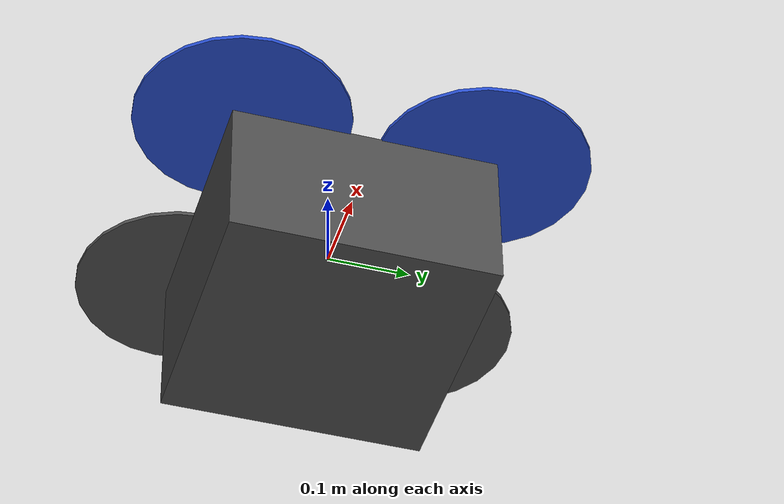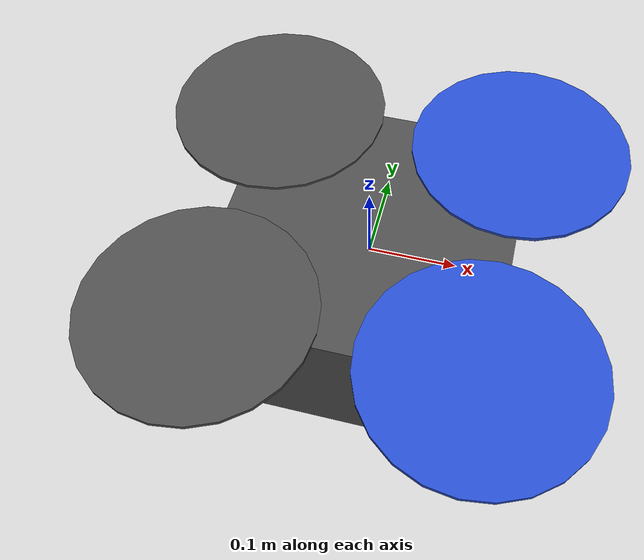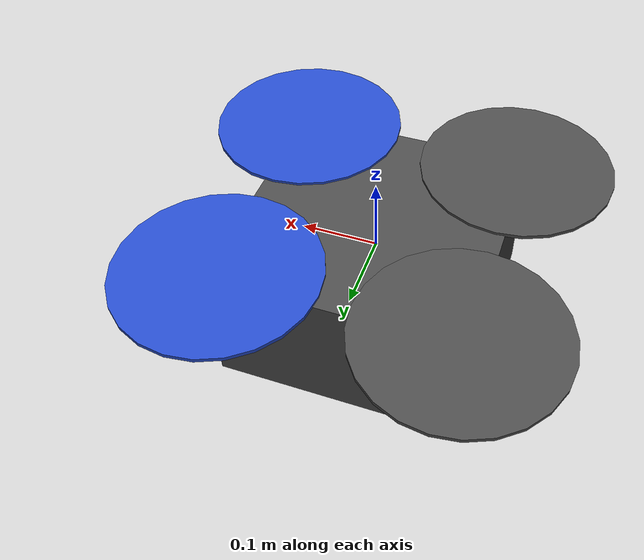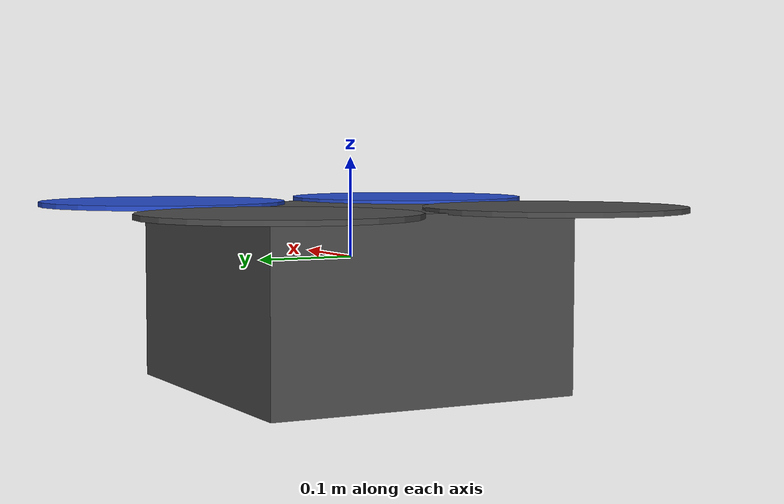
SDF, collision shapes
<sdf version='1.5'>
  <model name='solo'>
    <!-- Solo body -->
    <link name='base_link'>
      <pose>0 0 0 0 0 0</pose>
      <inertial>
        <pose>0 0 0 0 0 0</pose>
        <mass>1.47</mass>
        <inertia>
          <ixx>0.011</ixx>
          <ixy>0</ixy>
          <ixz>0</ixz>
          <iyy>0.015</iyy>
          <iyz>0</iyz>
          <izz>0.021</izz>
        </inertia>
      </inertial>
      <collision name='base_link_inertia_collision'>
        <pose>0 0 -0.04 0 0 0</pose>
        <geometry>
          <box>
            <size>0.32 0.32 0.18</size>
          </box>
        </geometry>
        <surface>
          <contact>
            <ode>
              <min_depth>0.001</min_depth>
              <max_vel>0</max_vel>
            </ode>
          </contact>
          <friction>
            <ode/>
          </friction>
        </surface>
      </collision>
      <visual name='base_link_inertia_visual'>
        <pose>0 0 0 0 0 0</pose>
        <geometry>
          <mesh>
            <scale>1 1 1</scale>
            <uri>model://solo/meshes/solo.stl</uri>
          </mesh>
        </geometry>
        <material>
          <script>
            <name>Gazebo/DarkGrey</name>
            <uri>file://media/materials/scripts/gazebo.material</uri>
          </script>
        </material>
      </visual>
      <gravity>1</gravity>
      <velocity_decay/>
      <self_collide>0</self_collide>
    </link>
    <link name='imu_link'>
      <pose>0 0 0 0 0 0</pose>
      <inertial>
        <pose>0 0 0 0 0 0</pose>
        <mass>0.015</mass>
        <inertia>
          <ixx>1e-05</ixx>
          <ixy>0</ixy>
          <ixz>0</ixz>
          <iyy>1e-05</iyy>
          <iyz>0</iyz>
          <izz>1e-05</izz>
        </inertia>
      </inertial>
    </link>
    <joint name='imu_joint' type='revolute'>
      <child>imu_link</child>
      <parent>base_link</parent>
      <axis>
        <xyz>1 0 0</xyz>
        <limit>
          <lower>0</lower>
          <upper>0</upper>
          <effort>0</effort>
          <velocity>0</velocity>
        </limit>
        <dynamics>
          <spring_reference>0</spring_reference>
          <spring_stiffness>0</spring_stiffness>
        </dynamics>
        <use_parent_model_frame>1</use_parent_model_frame>
      </axis>
    </joint>
    <link name='rotor_0'>
      <pose>0.14745 -0.14525 0.051 0 0 0</pose>
      <inertial>
        <pose>0 0 0 0 0 0</pose>
        <mass>0.005</mass>
        <inertia>
          <ixx>9.75e-07</ixx>
          <ixy>0</ixy>
          <ixz>0</ixz>
          <iyy>0.000273104</iyy>
          <iyz>0</iyz>
          <izz>0.000274004</izz>
        </inertia>
      </inertial>
      <collision name='rotor_0_collision'>
        <pose>0 0 0 0 0 0</pose>
        <geometry>
          <cylinder>
            <length>0.005</length>
            <radius>0.128</radius>
          </cylinder>
        </geometry>
        <surface>
          <contact>
            <ode/>
          </contact>
          <friction>
            <ode/>
          </friction>
        </surface>
      </collision>
      <visual name='rotor_0_visual'>
        <pose>-0.14745 -0.14525 -0.051 0 0 0</pose>
        <geometry>
          <mesh>
            <scale>1 1 1</scale>
            <uri>model://solo/meshes/solo_prop_ccw.stl</uri>
          </mesh>
        </geometry>
        <material>
          <script>
            <name>Gazebo/Blue</name>
            <uri>file://media/materials/scripts/gazebo.material</uri>
          </script>
        </material>
      </visual>
      <gravity>1</gravity>
      <velocity_decay/>
      <self_collide>0</self_collide>
    </link>
    <joint name='rotor_0_joint' type='revolute'>
      <child>rotor_0</child>
      <parent>base_link</parent>
      <axis>
        <xyz>0 0 1</xyz>
        <limit>
          <lower>-1e+16</lower>
          <upper>1e+16</upper>
        </limit>
        <dynamics>
          <spring_reference>0</spring_reference>
          <spring_stiffness>0</spring_stiffness>
        </dynamics>
        <use_parent_model_frame>1</use_parent_model_frame>
      </axis>
    </joint>
    <link name='rotor_1'>
      <pose>-0.14745 0.14525 0.051 0 0 0</pose>
      <inertial>
        <pose>0 0 0 0 0 0</pose>
        <mass>0.005</mass>
        <inertia>
          <ixx>9.75e-07</ixx>
          <ixy>0</ixy>
          <ixz>0</ixz>
          <iyy>0.000273104</iyy>
          <iyz>0</iyz>
          <izz>0.000274004</izz>
        </inertia>
      </inertial>
      <collision name='rotor_1_collision'>
        <pose>0 0 0 0 0 0</pose>
        <geometry>
          <cylinder>
            <length>0.005</length>
            <radius>0.128</radius>
          </cylinder>
        </geometry>
        <surface>
          <contact>
            <ode/>
          </contact>
          <friction>
            <ode/>
          </friction>
        </surface>
      </collision>
      <visual name='rotor_1_visual'>
        <pose>-0.14745 -0.14525 -0.051 0 0 0</pose>
        <geometry>
          <mesh>
            <scale>1 1 1</scale>
            <uri>model://solo/meshes/solo_prop_ccw.stl</uri>
          </mesh>
        </geometry>
        <material>
          <script>
            <name>Gazebo/DarkGrey</name>
            <uri>file://media/materials/scripts/gazebo.material</uri>
          </script>
        </material>
      </visual>
      <gravity>1</gravity>
      <velocity_decay/>
      <self_collide>0</self_collide>
    </link>
    <joint name='rotor_1_joint' type='revolute'>
      <child>rotor_1</child>
      <parent>base_link</parent>
      <axis>
        <xyz>0 0 1</xyz>
        <limit>
          <lower>-1e+16</lower>
          <upper>1e+16</upper>
        </limit>
        <dynamics>
          <spring_reference>0</spring_reference>
          <spring_stiffness>0</spring_stiffness>
        </dynamics>
        <use_parent_model_frame>1</use_parent_model_frame>
      </axis>
    </joint>
    <link name='rotor_2'>
      <pose>0.14745 0.14525 0.051 0 0 0</pose>
      <inertial>
        <pose>0 0 0 0 0 0</pose>
        <mass>0.005</mass>
        <inertia>
          <ixx>9.75e-07</ixx>
          <ixy>0</ixy>
          <ixz>0</ixz>
          <iyy>0.000273104</iyy>
          <iyz>0</iyz>
          <izz>0.000274004</izz>
        </inertia>
      </inertial>
      <collision name='rotor_2_collision'>
        <pose>0 0 0 0 0 0</pose>
        <geometry>
          <cylinder>
            <length>0.005</length>
            <radius>0.128</radius>
          </cylinder>
        </geometry>
        <surface>
          <contact>
            <ode/>
          </contact>
          <friction>
            <ode/>
          </friction>
        </surface>
      </collision>
      <visual name='rotor_2_visual'>
        <pose>-0.14745 0.14525 -0.051 0 0 0</pose>
        <geometry>
          <mesh>
            <scale>1 1 1</scale>
            <uri>model://solo/meshes/solo_prop_cw.stl</uri>
          </mesh>
        </geometry>
        <material>
          <script>
            <name>Gazebo/Blue</name>
            <uri>file://media/materials/scripts/gazebo.material</uri>
          </script>
        </material>
      </visual>
      <gravity>1</gravity>
      <velocity_decay/>
      <self_collide>0</self_collide>
    </link>
    <joint name='rotor_2_joint' type='revolute'>
      <child>rotor_2</child>
      <parent>base_link</parent>
      <axis>
        <xyz>0 0 1</xyz>
        <limit>
          <lower>-1e+16</lower>
          <upper>1e+16</upper>
        </limit>
        <dynamics>
          <spring_reference>0</spring_reference>
          <spring_stiffness>0</spring_stiffness>
        </dynamics>
        <use_parent_model_frame>1</use_parent_model_frame>
      </axis>
    </joint>
    <link name='rotor_3'>
      <pose>-0.14745 -0.14525 0.051 0 0 0</pose>
      <inertial>
        <pose>0 0 0 0 0 0</pose>
        <mass>0.005</mass>
        <inertia>
          <ixx>9.75e-07</ixx>
          <ixy>0</ixy>
          <ixz>0</ixz>
          <iyy>0.000273104</iyy>
          <iyz>0</iyz>
          <izz>0.000274004</izz>
        </inertia>
      </inertial>
      <collision name='rotor_3_collision'>
        <pose>0 0 0 0 0 0</pose>
        <geometry>
          <cylinder>
            <length>0.005</length>
            <radius>0.128</radius>
          </cylinder>
        </geometry>
        <surface>
          <contact>
            <ode/>
          </contact>
          <friction>
            <ode/>
          </friction>
        </surface>
      </collision>
      <visual name='rotor_3_visual'>
        <pose>-0.14745 0.14525 -0.051 0 0 0</pose>
        <geometry>
          <mesh>
            <scale>1 1 1</scale>
            <uri>model://solo/meshes/solo_prop_cw.stl</uri>
          </mesh>
        </geometry>
        <material>
          <script>
            <name>Gazebo/DarkGrey</name>
            <uri>file://media/materials/scripts/gazebo.material</uri>
          </script>
        </material>
      </visual>
      <gravity>1</gravity>
      <velocity_decay/>
      <self_collide>0</self_collide>
    </link>
    <joint name='rotor_3_joint' type='revolute'>
      <child>rotor_3</child>
      <parent>base_link</parent>
      <axis>
        <xyz>0 0 1</xyz>
        <limit>
          <lower>-1e+16</lower>
          <upper>1e+16</upper>
        </limit>
        <dynamics>
          <spring_reference>0</spring_reference>
          <spring_stiffness>0</spring_stiffness>
        </dynamics>
        <use_parent_model_frame>1</use_parent_model_frame>
      </axis>
    </joint>
    <link name='cam_frontal'>
      <pose>0.124 0 0 0 -0 0</pose>
      <inertial>
        <mass>0.015</mass>
          <inertia>
            <ixx>4.15e-6</ixx>
            <ixy>0</ixy>
            <ixz>0</ixz>
            <iyy>2.407e-6</iyy>
            <iyz>0</iyz>
            <izz>2.407e-6</izz>
          </inertia>
      </inertial>
      <collision name='collision'>
        <geometry>
          <box>
            <size>0.01 0.01 0.01</size>
          </box>
        </geometry>
        <max_contacts>10</max_contacts>
        <surface>
          <contact>
            <ode/>
          </contact>
          <bounce/>
            <friction>
              <ode/>
            </friction>
        </surface>
      </collision>
      <visual name='visual'>
        <geometry>
          <box>
            <size>0.01 0.01 0.01</size>
          </box>
        </geometry>
      </visual>
      <sensor name='camera' type='camera'>
        <camera name='cam_frontal'>
          <horizontal_fov>1.047</horizontal_fov>
            <image>
              <width>320</width>
              <height>240</height>
            </image>
            <clip>
              <near>0.1</near>
              <far>100</far>
            </clip>
            <lens>
              <type>custom</type>
              <custom_function>
                <c1>1.05</c1>
                <c2>4</c2>
                <f>1</f>
                <fun>tan</fun>
              </custom_function>
              <scale_to_hfov>1</scale_to_hfov>
              <cutoff_angle>3.1415</cutoff_angle>
              <env_texture_size>1080</env_texture_size>
            </lens>
          </camera>
          <always_on>1</always_on>
          <update_rate>30</update_rate>
          <visualize>0</visualize>
          <plugin name='camera_plugin' filename='libgazebo_ros_camera.so'>
            <robotNamespace></robotNamespace>
            <alwaysOn>true</alwaysOn>
            <imageTopicName>image_raw</imageTopicName>
            <cameraInfoTopicName>camera_info</cameraInfoTopicName>
            <updateRate>30.0</updateRate>
            <cameraName>cam_frontal/</cameraName>
            <frameName>/robot_camera_link</frameName>
            <CxPrime>320.5</CxPrime>
            <Cx>320.5</Cx>
            <Cy>240.5</Cy>
            <hackBaseline>0</hackBaseline>
            <focalLength>277.191356</focalLength>
            <distortionK1>0.0</distortionK1>
            <distortionK2>0.0</distortionK2>
            <distortionK3>0.0</distortionK3>
            <distortionT1>0.0</distortionT1>
            <distortionT2>0.0</distortionT2>
          </plugin>
      </sensor>
      <self_collide>0</self_collide>
      <kinematic>0</kinematic>
    </link>

    <joint name="fpv_cam_joint_frontal" type="fixed">
      <child>cam_frontal</child>
      <parent>base_link</parent>
      <axis>
        <xyz>0 0 1</xyz>
        <limit>
          <upper>0</upper>
          <lower>0</lower>
        </limit>
      </axis>
    </joint>

    <link name='cam_ventral'>
      <pose>0 0 -0.037 0 1.57 0</pose>
      <inertial>
        <mass>0.015</mass>
          <inertia>
            <ixx>4.15e-6</ixx>
            <ixy>0</ixy>
            <ixz>0</ixz>
            <iyy>2.407e-6</iyy>
            <iyz>0</iyz>
            <izz>2.407e-6</izz>
          </inertia>
      </inertial>
      <collision name='collision'>
        <geometry>
          <box>
            <size>0.01 0.01 0.01</size>
          </box>
        </geometry>
        <max_contacts>10</max_contacts>
        <surface>
          <contact>
            <ode/>
          </contact>
          <bounce/>
            <friction>
              <ode/>
            </friction>
        </surface>
      </collision>
      <visual name='visual'>
        <geometry>
          <box>
            <size>0.01 0.01 0.01</size>
          </box>
        </geometry>
      </visual>
      <sensor name='camera' type='camera'>
        <camera name='cam_ventral'>
          <horizontal_fov>1.047</horizontal_fov>
            <image>
              <width>320</width>
              <height>240</height>
            </image>
            <clip>
              <near>0.1</near>
              <far>100</far>
            </clip>
            <lens>
              <type>custom</type>
              <custom_function>
                <c1>1.05</c1>
                <c2>4</c2>
                <f>1</f>
                <fun>tan</fun>
              </custom_function>
              <scale_to_hfov>1</scale_to_hfov>
              <cutoff_angle>3.1415</cutoff_angle>
              <env_texture_size>1080</env_texture_size>
            </lens>
          </camera>
          <always_on>1</always_on>
          <update_rate>30</update_rate>
          <visualize>0</visualize>
          <plugin name='camera_plugin' filename='libgazebo_ros_camera.so'>
            <robotNamespace></robotNamespace>
            <alwaysOn>true</alwaysOn>
            <imageTopicName>image_raw</imageTopicName>
            <cameraInfoTopicName>camera_info</cameraInfoTopicName>
            <updateRate>30.0</updateRate>
            <cameraName>cam_ventral/</cameraName>
            <frameName>/robot_camera_link</frameName>
            <CxPrime>320.5</CxPrime>
            <Cx>320.5</Cx>
            <Cy>240.5</Cy>
            <hackBaseline>0</hackBaseline>
            <focalLength>277.191356</focalLength>
            <distortionK1>0.0</distortionK1>
            <distortionK2>0.0</distortionK2>
            <distortionK3>0.0</distortionK3>
            <distortionT1>0.0</distortionT1>
            <distortionT2>0.0</distortionT2>
          </plugin>
      </sensor>
      <self_collide>0</self_collide>
      <kinematic>0</kinematic>
    </link>

    <joint name="fpv_cam_joint_ventral" type="fixed">
      <child>cam_ventral</child>
      <parent>base_link</parent>
      <axis>
        <xyz>0 0 1</xyz>
        <limit>
          <upper>0</upper>
          <lower>0</lower>
        </limit>
      </axis>
    </joint>

    <plugin name='rosbag' filename='libgazebo_multirotor_base_plugin.so'>
      <robotNamespace></robotNamespace>
      <linkName>base_link</linkName>
      <rotorVelocitySlowdownSim>10</rotorVelocitySlowdownSim>
    </plugin>
    <plugin name='front_right_motor_model' filename='libgazebo_motor_model.so'>
      <robotNamespace></robotNamespace>
      <jointName>rotor_0_joint</jointName>
      <linkName>rotor_0</linkName>
      <turningDirection>ccw</turningDirection>
      <timeConstantUp>0.0125</timeConstantUp>
      <timeConstantDown>0.025</timeConstantDown>
      <maxRotVelocity>1500</maxRotVelocity>
      <motorConstant>8.54858e-06</motorConstant>
      <momentConstant>0.06</momentConstant>
      <commandSubTopic>/gazebo/command/motor_speed</commandSubTopic>
      <motorNumber>0</motorNumber>
      <rotorDragCoefficient>0.000806428</rotorDragCoefficient>
      <rollingMomentCoefficient>1e-06</rollingMomentCoefficient>
      <motorSpeedPubTopic>/motor_speed/0</motorSpeedPubTopic>
      <rotorVelocitySlowdownSim>10</rotorVelocitySlowdownSim>
    </plugin>
    <plugin name='back_left_motor_model' filename='libgazebo_motor_model.so'>
      <robotNamespace></robotNamespace>
      <jointName>rotor_1_joint</jointName>
      <linkName>rotor_1</linkName>
      <turningDirection>ccw</turningDirection>
      <timeConstantUp>0.0125</timeConstantUp>
      <timeConstantDown>0.025</timeConstantDown>
      <maxRotVelocity>1500</maxRotVelocity>
      <motorConstant>8.54858e-06</motorConstant>
      <momentConstant>0.06</momentConstant>
      <commandSubTopic>/gazebo/command/motor_speed</commandSubTopic>
      <motorNumber>1</motorNumber>
      <rotorDragCoefficient>0.000806428</rotorDragCoefficient>
      <rollingMomentCoefficient>1e-06</rollingMomentCoefficient>
      <motorSpeedPubTopic>/motor_speed/1</motorSpeedPubTopic>
      <rotorVelocitySlowdownSim>10</rotorVelocitySlowdownSim>
    </plugin>
    <plugin name='front_left_motor_model' filename='libgazebo_motor_model.so'>
      <robotNamespace></robotNamespace>
      <jointName>rotor_2_joint</jointName>
      <linkName>rotor_2</linkName>
      <turningDirection>cw</turningDirection>
      <timeConstantUp>0.0125</timeConstantUp>
      <timeConstantDown>0.025</timeConstantDown>
      <maxRotVelocity>1500</maxRotVelocity>
      <motorConstant>8.54858e-06</motorConstant>
      <momentConstant>0.06</momentConstant>
      <commandSubTopic>/gazebo/command/motor_speed</commandSubTopic>
      <motorNumber>2</motorNumber>
      <rotorDragCoefficient>0.000806428</rotorDragCoefficient>
      <rollingMomentCoefficient>1e-06</rollingMomentCoefficient>
      <motorSpeedPubTopic>/motor_speed/2</motorSpeedPubTopic>
      <rotorVelocitySlowdownSim>10</rotorVelocitySlowdownSim>
    </plugin>
    <plugin name='back_right_motor_model' filename='libgazebo_motor_model.so'>
      <robotNamespace></robotNamespace>
      <jointName>rotor_3_joint</jointName>
      <linkName>rotor_3</linkName>
      <turningDirection>cw</turningDirection>
      <timeConstantUp>0.0125</timeConstantUp>
      <timeConstantDown>0.025</timeConstantDown>
      <maxRotVelocity>1500</maxRotVelocity>
      <motorConstant>8.54858e-06</motorConstant>
      <momentConstant>0.06</momentConstant>
      <commandSubTopic>/gazebo/command/motor_speed</commandSubTopic>
      <motorNumber>3</motorNumber>
      <rotorDragCoefficient>0.000806428</rotorDragCoefficient>
      <rollingMomentCoefficient>1e-06</rollingMomentCoefficient>
      <motorSpeedPubTopic>/motor_speed/3</motorSpeedPubTopic>
      <rotorVelocitySlowdownSim>10</rotorVelocitySlowdownSim>
    </plugin>
    <plugin name="gps_plugin" filename="libgazebo_gps_plugin.so">
        <robotNamespace></robotNamespace>
        <gpsNoise>true</gpsNoise>
    </plugin>
        <plugin name='mavlink_interface' filename='libgazebo_mavlink_interface.so'>
      <robotNamespace/>
      <imuSubTopic>/imu</imuSubTopic>
      <gpsSubTopic>/gps</gpsSubTopic>
      <mavlink_addr>INADDR_ANY</mavlink_addr>
      <mavlink_udp_port>14560</mavlink_udp_port>
      <serialEnabled>false</serialEnabled>
      <serialDevice>/dev/ttyACM0</serialDevice>
      <baudRate>921600</baudRate>
      <qgc_addr>INADDR_ANY</qgc_addr>
      <qgc_udp_port>14550</qgc_udp_port>
      <hil_mode>false</hil_mode>
      <hil_state_level>false</hil_state_level>
      <motorSpeedCommandPubTopic>/gazebo/command/motor_speed</motorSpeedCommandPubTopic>
      <control_channels>
        <channel name='rotor1'>
          <input_index>0</input_index>
          <input_offset>0</input_offset>
          <input_scaling>1200</input_scaling>
          <zero_position_disarmed>0</zero_position_disarmed>
          <zero_position_armed>100</zero_position_armed>
          <joint_control_type>velocity</joint_control_type>
        </channel>
        <channel name='rotor2'>
          <input_index>1</input_index>
          <input_offset>0</input_offset>
          <input_scaling>1200</input_scaling>
          <zero_position_disarmed>0</zero_position_disarmed>
          <zero_position_armed>100</zero_position_armed>
          <joint_control_type>velocity</joint_control_type>
        </channel>
        <channel name='rotor3'>
          <input_index>2</input_index>
          <input_offset>0</input_offset>
          <input_scaling>1200</input_scaling>
          <zero_position_disarmed>0</zero_position_disarmed>
          <zero_position_armed>100</zero_position_armed>
          <joint_control_type>velocity</joint_control_type>
        </channel>
        <channel name='rotor4'>
          <input_index>3</input_index>
          <input_offset>0</input_offset>
          <input_scaling>1200</input_scaling>
          <zero_position_disarmed>0</zero_position_disarmed>
          <zero_position_armed>100</zero_position_armed>
          <joint_control_type>velocity</joint_control_type>
        </channel>
      </control_channels>
    </plugin>
    <static>0</static>
    <plugin name='gazebo_imu_plugin' filename='libgazebo_imu_plugin.so'>
      <robotNamespace></robotNamespace>
      <linkName>imu_link</linkName>
      <imuTopic>/imu</imuTopic>
      <gyroscopeNoiseDensity>0.0003394</gyroscopeNoiseDensity>
      <gyroscopeRandomWalk>3.8785e-05</gyroscopeRandomWalk>
      <gyroscopeBiasCorrelationTime>1000.0</gyroscopeBiasCorrelationTime>
      <gyroscopeTurnOnBiasSigma>0.0087</gyroscopeTurnOnBiasSigma>
      <accelerometerNoiseDensity>0.004</accelerometerNoiseDensity>
      <accelerometerRandomWalk>0.006</accelerometerRandomWalk>
      <accelerometerBiasCorrelationTime>300.0</accelerometerBiasCorrelationTime>
      <accelerometerTurnOnBiasSigma>0.196</accelerometerTurnOnBiasSigma>
    </plugin>
  </model>
</sdf>
